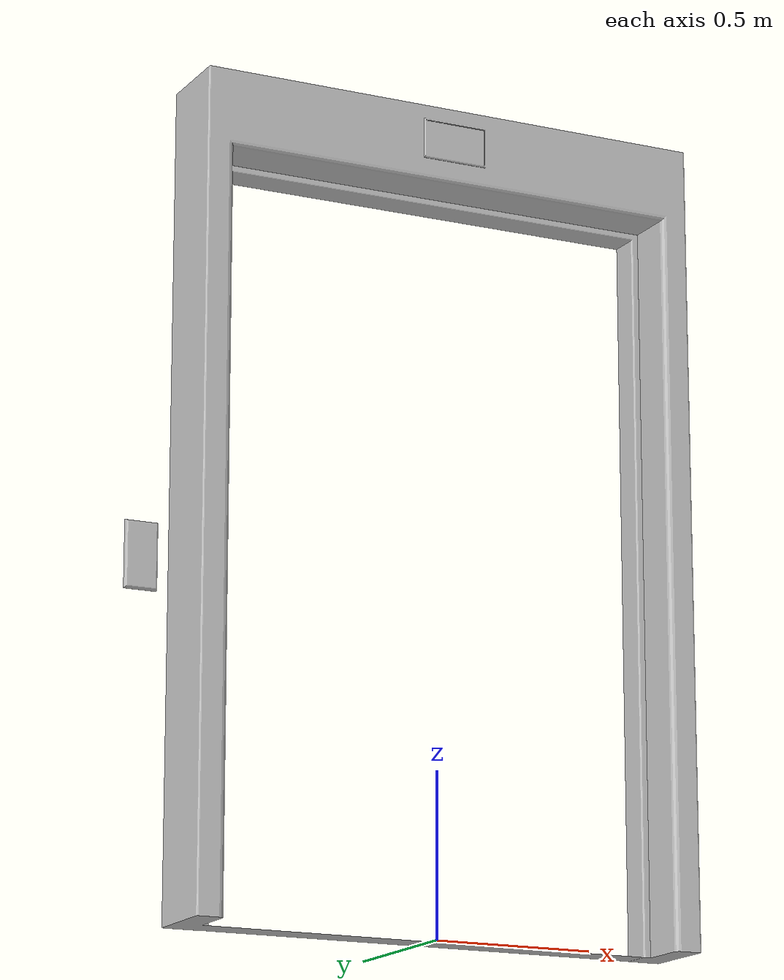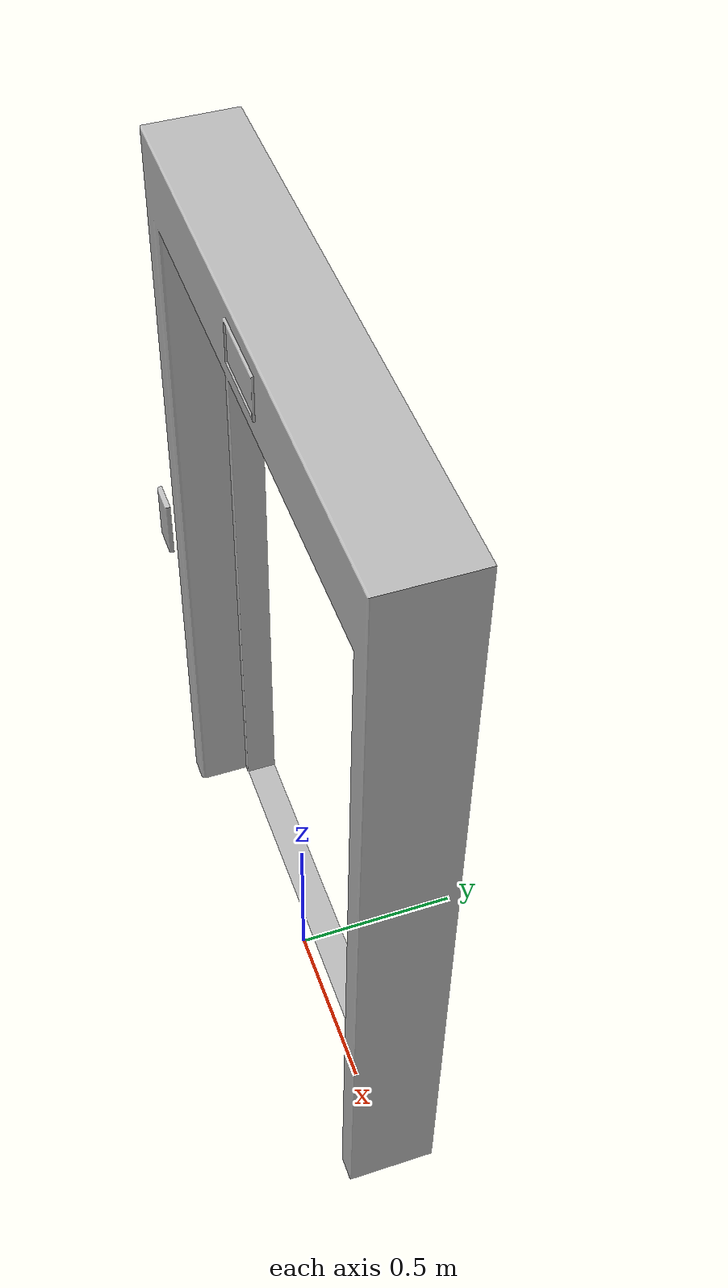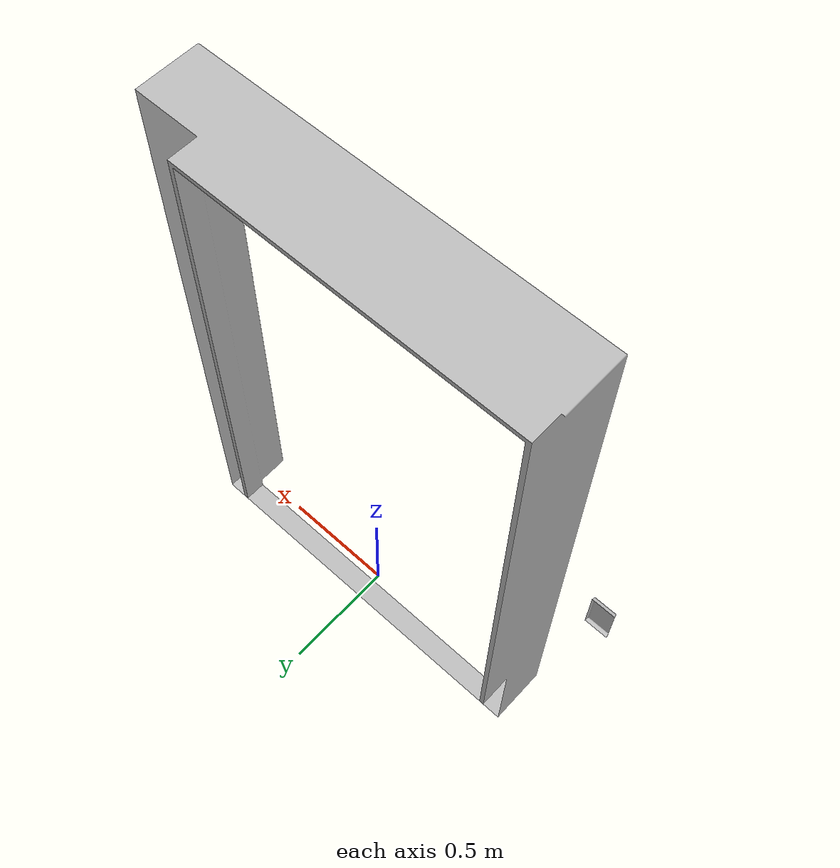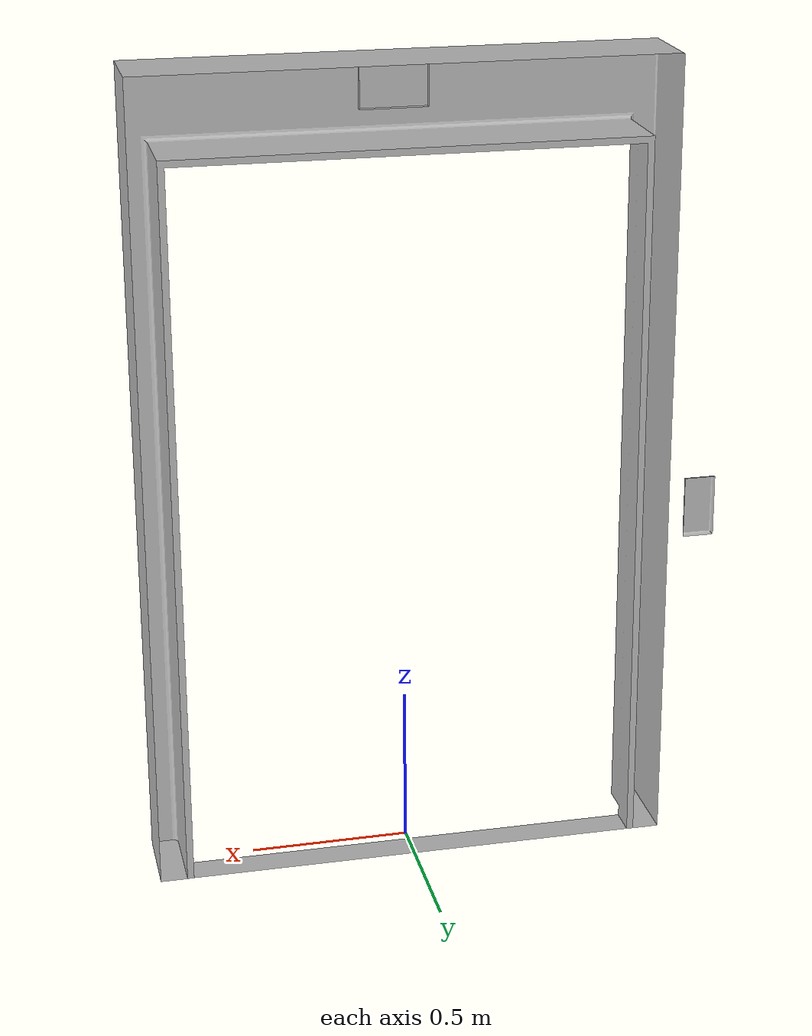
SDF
<?xml version="1.0" ?>
<sdf version="1.6">
  <model name="aws_robomaker_hospital_elevator_01_portal">
    <link name="link">
      <visual name="visual">
        <geometry>
          <mesh>
            <uri>model://aws_robomaker_hospital_elevator_01_portal/meshes/aws_robomaker_hospital_elevator_01_portal_visual.dae</uri>
          </mesh>
        </geometry>
      </visual>
      <collision name="collision">
        <geometry>
          <mesh>
            <uri>model://aws_robomaker_hospital_elevator_01_portal/meshes/aws_robomaker_hospital_elevator_01_portal_collision.dae</uri>
          </mesh>
        </geometry>
      </collision>
    </link>
    <static>1</static>
  </model>
</sdf>
